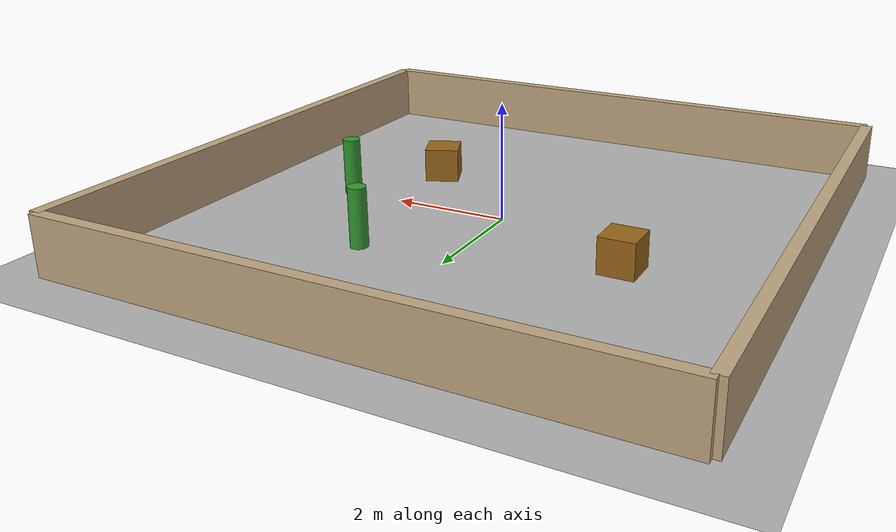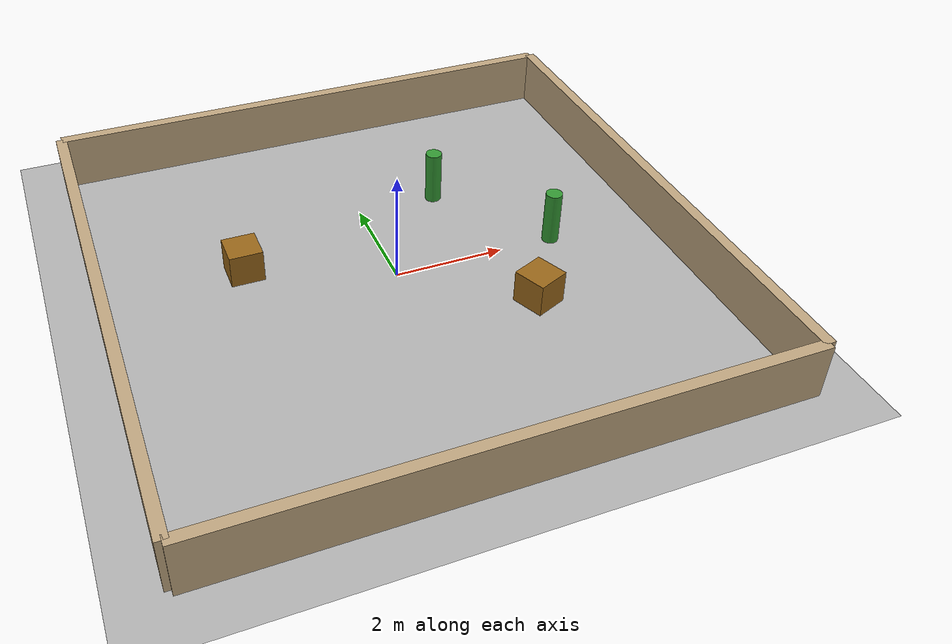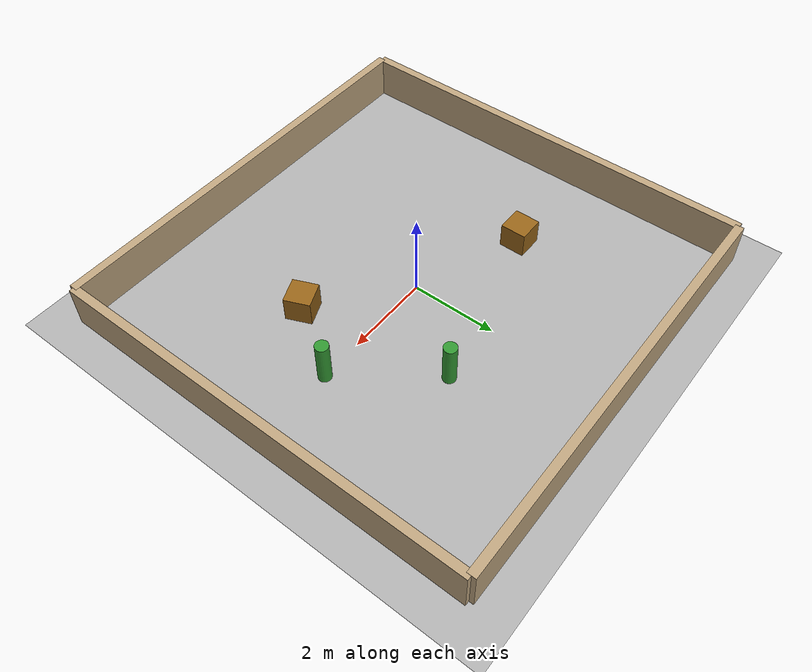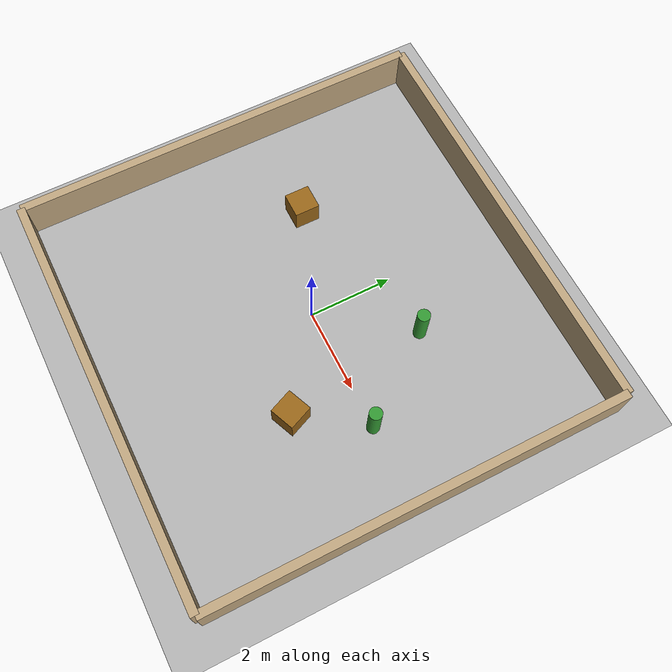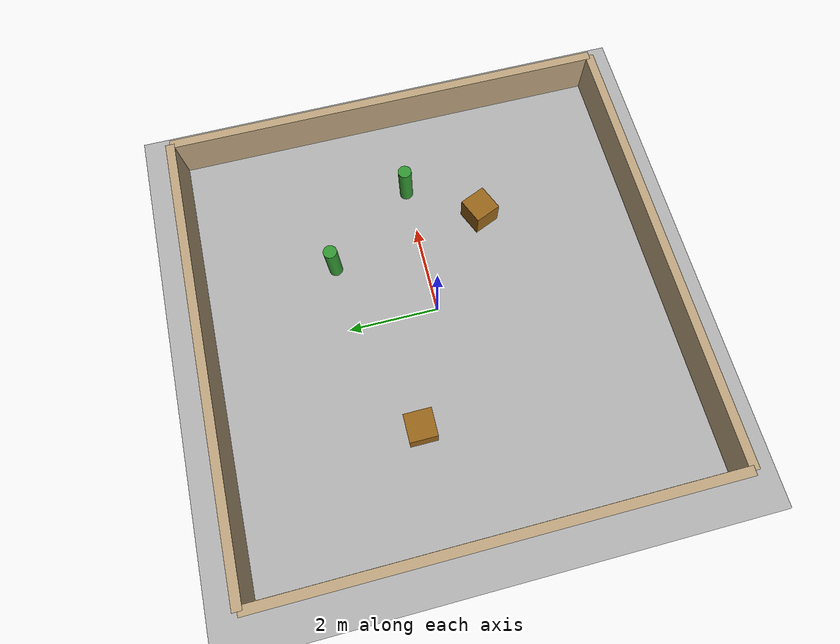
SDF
<?xml version="1.0" ?>
<sdf version="1.8">
  <world name="wheelchair_world">

    <!-- ── Required system plugins ─────────────────────────────────────────── -->
    <plugin filename="libignition-gazebo6-physics-system.so"
            name="ignition::gazebo::systems::Physics"/>
    <plugin filename="libignition-gazebo6-user-commands-system.so"
            name="ignition::gazebo::systems::UserCommands"/>
    <plugin filename="libignition-gazebo6-scene-broadcaster-system.so"
            name="ignition::gazebo::systems::SceneBroadcaster"/>

    <!-- ── Lighting ─────────────────────────────────────────────────────────── -->
    <light name="sun" type="directional">
      <cast_shadows>true</cast_shadows>
      <pose>0 0 10 0 0 0</pose>
      <diffuse>0.8 0.8 0.8 1</diffuse>
      <specular>0.2 0.2 0.2 1</specular>
      <direction>-0.5 0.1 -0.9</direction>
      <attenuation>
        <range>1000</range>
        <constant>0.9</constant>
        <linear>0.01</linear>
        <quadratic>0.001</quadratic>
      </attenuation>
    </light>

    <!-- ── Ground plane ─────────────────────────────────────────────────────── -->
    <model name="ground_plane">
      <static>true</static>
      <link name="link">
        <collision name="collision">
          <geometry>
            <plane>
              <normal>0 0 1</normal>
              <size>30 30</size>
            </plane>
          </geometry>
          <surface>
            <friction>
              <ode><mu>1.0</mu><mu2>1.0</mu2></ode>
            </friction>
          </surface>
        </collision>
        <visual name="visual">
          <geometry>
            <plane>
              <normal>0 0 1</normal>
              <size>30 30</size>
            </plane>
          </geometry>
          <material>
            <ambient>0.7 0.7 0.7 1</ambient>
            <diffuse>0.7 0.7 0.7 1</diffuse>
          </material>
        </visual>
      </link>
    </model>

    <!-- ── Pillar 1 — straight ahead at 3 m ─────────────────────────────────── -->
    <model name="pillar_1">
      <static>true</static>
      <pose>3.0 0.0 0.5 0 0 0</pose>
      <link name="link">
        <collision name="collision">
          <geometry><cylinder><radius>0.15</radius><length>1.0</length></cylinder></geometry>
        </collision>
        <visual name="visual">
          <geometry><cylinder><radius>0.15</radius><length>1.0</length></cylinder></geometry>
          <material>
            <ambient>0.2 0.6 0.2 1</ambient>
            <diffuse>0.2 0.6 0.2 1</diffuse>
          </material>
        </visual>
      </link>
    </model>

    <!-- ── Pillar 2 — left at 2 m ────────────────────────────────────────────── -->
    <model name="pillar_2">
      <static>true</static>
      <pose>1.5 2.0 0.5 0 0 0</pose>
      <link name="link">
        <collision name="collision">
          <geometry><cylinder><radius>0.15</radius><length>1.0</length></cylinder></geometry>
        </collision>
        <visual name="visual">
          <geometry><cylinder><radius>0.15</radius><length>1.0</length></cylinder></geometry>
          <material>
            <ambient>0.2 0.6 0.2 1</ambient>
            <diffuse>0.2 0.6 0.2 1</diffuse>
          </material>
        </visual>
      </link>
    </model>

    <!-- ── Box crate — right and slightly forward ────────────────────────────── -->
    <model name="crate_1">
      <static>true</static>
      <pose>2.0 -1.5 0.3 0 0 0.4</pose>
      <link name="link">
        <collision name="collision">
          <geometry><box><size>0.6 0.6 0.6</size></box></geometry>
        </collision>
        <visual name="visual">
          <geometry><box><size>0.6 0.6 0.6</size></box></geometry>
          <material>
            <ambient>0.6 0.4 0.1 1</ambient>
            <diffuse>0.6 0.4 0.1 1</diffuse>
          </material>
        </visual>
      </link>
    </model>

    <!-- ── Box crate — behind and left ──────────────────────────────────────── -->
    <model name="crate_2">
      <static>true</static>
      <pose>-2.5 1.0 0.3 0 0 0</pose>
      <link name="link">
        <collision name="collision">
          <geometry><box><size>0.6 0.6 0.6</size></box></geometry>
        </collision>
        <visual name="visual">
          <geometry><box><size>0.6 0.6 0.6</size></box></geometry>
          <material>
            <ambient>0.6 0.4 0.1 1</ambient>
            <diffuse>0.6 0.4 0.1 1</diffuse>
          </material>
        </visual>
      </link>
    </model>

    <!-- ── Long wall — north side ────────────────────────────────────────────── -->
    <model name="wall_north">
      <static>true</static>
      <pose>0.0 5.0 0.5 0 0 0</pose>
      <link name="link">
        <collision name="collision">
          <geometry><box><size>10.0 0.2 1.0</size></box></geometry>
        </collision>
        <visual name="visual">
          <geometry><box><size>10.0 0.2 1.0</size></box></geometry>
          <material>
            <ambient>0.75 0.65 0.5 1</ambient>
            <diffuse>0.75 0.65 0.5 1</diffuse>
          </material>
        </visual>
      </link>
    </model>

    <!-- ── Long wall — south side ────────────────────────────────────────────── -->
    <model name="wall_south">
      <static>true</static>
      <pose>0.0 -5.0 0.5 0 0 0</pose>
      <link name="link">
        <collision name="collision">
          <geometry><box><size>10.0 0.2 1.0</size></box></geometry>
        </collision>
        <visual name="visual">
          <geometry><box><size>10.0 0.2 1.0</size></box></geometry>
          <material>
            <ambient>0.75 0.65 0.5 1</ambient>
            <diffuse>0.75 0.65 0.5 1</diffuse>
          </material>
        </visual>
      </link>
    </model>

    <!-- ── Long wall — east side ─────────────────────────────────────────────── -->
    <model name="wall_east">
      <static>true</static>
      <pose>5.0 0.0 0.5 0 0 1.5708</pose>
      <link name="link">
        <collision name="collision">
          <geometry><box><size>10.0 0.2 1.0</size></box></geometry>
        </collision>
        <visual name="visual">
          <geometry><box><size>10.0 0.2 1.0</size></box></geometry>
          <material>
            <ambient>0.75 0.65 0.5 1</ambient>
            <diffuse>0.75 0.65 0.5 1</diffuse>
          </material>
        </visual>
      </link>
    </model>

    <!-- ── Long wall — west side ─────────────────────────────────────────────── -->
    <model name="wall_west">
      <static>true</static>
      <pose>-5.0 0.0 0.5 0 0 1.5708</pose>
      <link name="link">
        <collision name="collision">
          <geometry><box><size>10.0 0.2 1.0</size></box></geometry>
        </collision>
        <visual name="visual">
          <geometry><box><size>10.0 0.2 1.0</size></box></geometry>
          <material>
            <ambient>0.75 0.65 0.5 1</ambient>
            <diffuse>0.75 0.65 0.5 1</diffuse>
          </material>
        </visual>
      </link>
    </model>

  </world>
</sdf>
